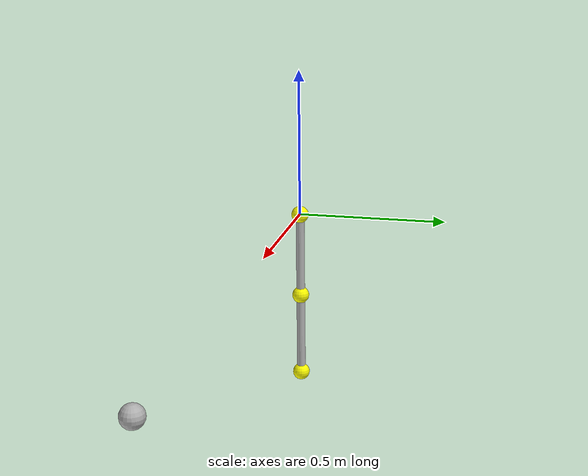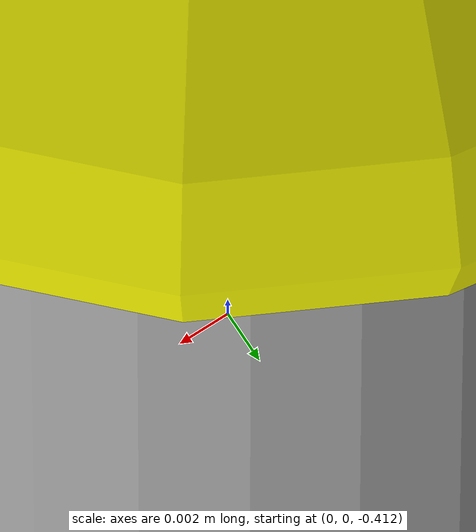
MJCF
<mujoco model="NNodeWhipModel">

  <compiler inertiafromgeom = "auto" angle = "radian"/>

   <!-- (semi-) implicit Euler method was used for the integrator with time step of 0.1ms -->
	<option timestep='0.0001' iterations='50' integrator='Euler' collision='all' gravity="0 0 -9.81"/>

  <asset>
    <!-- Texture of the surrounding sky box
         setting everything as white-ish color for better visualization -->
     <texture type="skybox"
              builtin="flat"
              rgb1="1 1 1"
              rgb2="1 1 1"
              width="100"
              height="100"/>

     <!-- Joint and Limb Color -->
     <material name = "JointColor"     rgba = "1.0 1.0 0.0 1.0"/>
     <material name = "LimbColor"      rgba = "0.7 0.7 0.7 1.0"/>
     <material name = "pointMassColor" rgba = "1.0 1.0 1.0 1.0"/>
     <material name = "RefMassColor"   rgba = "0.2 0.9 0.1 1.0"/>

  </asset>

  <!-- =============== MAIN BODY STARTS ============= -->
  <worldbody>

    <!-- =============== CAMERA DEF STARTS ============= -->
    <body name='camera' pos='0 0 0'>
				<camera name='myCamera' pos='0.7975 -3.19 -0.4785' euler='1.5707 0 0'/>
  	</body>
    <!-- =============== CAMERA DEF   ENDS ============= -->

    <!-- ===============  MODEL STARTS  =============== -->

    <!-- =============  UPPER ARM START =============== -->
		<body name='upperArm' pos='0 0 0' euler='0 0 0'>
      <joint name='shoulderJoint' ref='0' type='hinge' stiffness='0' pos='0 0 0' axis='0 -1 0' />
			<inertial pos='0 0 -0.129' mass='1.595' diaginertia='0.011917 0.011937 0.001325'/>
			<geom name='shoulderGeom' type='sphere' pos='0 0 0' material='JointColor' size='0.0294' mass='0'/>
			<geom type='cylinder' fromto='0 0 0 0 0 -0.294'     material='LimbColor'  size='0.0147' mass='0'/>
      <site name='upperArmCOM' pos='0 0 -0.129' />      <!-- This site is attached to the Center of Mass of the upper Arm. This site is needed for the gravity-compensation torque, please see "../controller/myController.py" for more detail  -->
    	<!-- =============  UPPER ARM  END  =============== -->

      <!-- ============ FORE ARM START =============== -->
			<body name='foreArm' pos='0 0 -0.294' euler='0 0 0'>
        <joint name='elbowJoint' ref='0' type='hinge' stiffness='0' pos='0 0 0' axis='0 -1 0'/>
				<inertial pos='0 0 -0.112' mass='0.869' diaginertia='0.004765 0.004855 0.000472'/>
				<geom name='elbowGeom'       type='sphere' pos='0 0 0'      material='JointColor' size='0.0294' mass='0'/>
				<geom type='cylinder' fromto='0 0 0 0 0 -0.291'             material='LimbColor'  size='0.0147' mass='0'/>
        <site name='foreArmCOM' pos='0 0 -0.112' />      <!-- This site is attached to the Center of Mass of the fore Arm. This site is needed for the gravity-compensation torque, please see "../controller/myController.py" for more detail  -->
				<geom name='geom_EE' type='sphere' pos='0 0 -0.291' material='JointColor' size='0.0294' mass='0'/>
				<!-- Do not change 'geom_EE' as name, since the whip will be appended to the body containig geom_EE -->

      </body>

  </body>

	  <geom name='target' type='sphere' pos='1.595 0.0 0.0' material='LimbColor' mass='0' size='0.03'/>

  </worldbody>

  <!-- Independently controlled torque actuators were mounted co-axially with the shoulder and elbow joints. -->
  <actuator>
		  <motor joint='shoulderJoint' name='shoulderJointTorqueMotor' forcelimited='false'/>
		  <motor joint='elbowJoint'    name='elbowJointTorqueMotor'    forcelimited='false'/>
  </actuator>

</mujoco>
